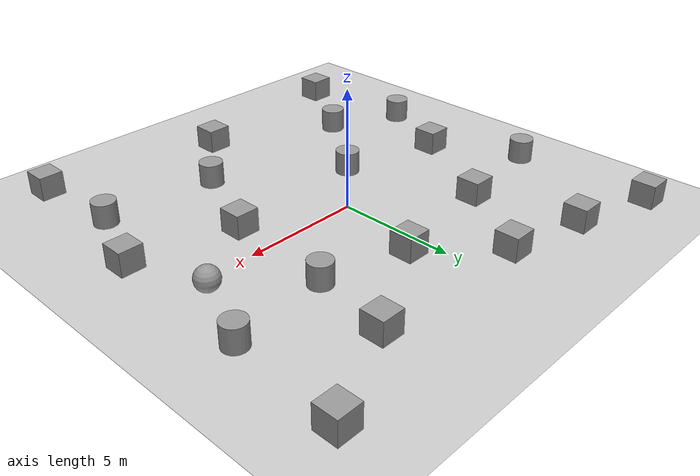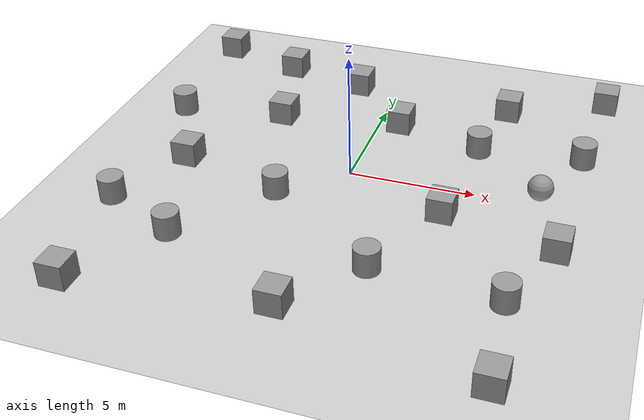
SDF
<sdf version="1.6">
 <world name="default">
  <light name="sun" type="directional">
   <pose>0 0 10 0 -0 0</pose>
   <diffuse>0.8 0.8 0.8 1</diffuse>
   <specular>0.1 0.1 0.1 1</specular>
   <attenuation>
    <range>1000</range>
    <constant>0.9</constant>
    <linear>0.01</linear>
    <quadratic>0.001</quadratic>
   </attenuation>
   <direction>-0.5 0.5 -1</direction>
  </light>
  <model name="ground_plane">
   <static>1</static>
   <link name="link">
    <collision name="collision">
     <geometry><plane><normal>0 0 1</normal><size>100 100</size></plane></geometry>
     <surface><friction><ode><mu>100</mu><mu2>50</mu2></ode></friction></surface>
    </collision>
    <visual name="visual">
     <cast_shadows>0</cast_shadows>
     <geometry><plane><normal>0 0 1</normal><size>100 100</size></plane></geometry>
     <material>
      <script><uri>file://media/materials/scripts/gazebo.material</uri><name>Gazebo/Grey</name></script>
     </material>
    </visual>
   </link>
  </model>
  <gravity>0 0 -9.8</gravity>
  <magnetic_field>6e-06 2.3e-05 -4.2e-05</magnetic_field>
  <atmosphere type="adiabatic"/>
  <physics name="default_physics" default="0" type="ode">
   <max_step_size>0.001</max_step_size>
   <real_time_factor>1</real_time_factor>
   <real_time_update_rate>1000</real_time_update_rate>
  </physics>
  <scene><ambient>0.4 0.4 0.4 1</ambient><background>0.7 0.7 0.7 1</background><shadows>1</shadows></scene>
  <spherical_coordinates>
   <surface_model>EARTH_WGS84</surface_model>
   <latitude_deg>0</latitude_deg>
   <longitude_deg>0</longitude_deg>
   <elevation>0</elevation>
   <heading_deg>0</heading_deg>
  </spherical_coordinates>
  <model name="unit_box_0">
   <pose>-4.04425 3.20234 0.499995 0 1e-05 0</pose>
   <link name="link">
    <inertial>
     <mass>1</mass>
     <inertia>
      <ixx>0.166667</ixx>
      <ixy>0</ixy>
      <ixz>0</ixz>
      <iyy>0.166667</iyy>
      <iyz>0</iyz>
      <izz>0.166667</izz>
     </inertia>
    </inertial>
    <collision name="collision"><geometry><box><size>1 1 1</size></box></geometry></collision>
    <visual name="visual">
     <geometry><box><size>1 1 1</size></box></geometry>
     <material>
      <script><name>Gazebo/Grey</name><uri>file://media/materials/scripts/gazebo.material</uri></script>
     </material>
    </visual>
   </link>
  </model>
  <model name="unit_box_1">
   <pose>-5.14539 7.37162 0.499995 1e-05 -0 0</pose>
   <link name="link">
    <inertial>
     <mass>1</mass>
     <inertia>
      <ixx>0.166667</ixx>
      <ixy>0</ixy>
      <ixz>0</ixz>
      <iyy>0.166667</iyy>
      <iyz>0</iyz>
      <izz>0.166667</izz>
     </inertia>
    </inertial>
    <collision name="collision"><geometry><box><size>1 1 1</size></box></geometry></collision>
    <visual name="visual">
     <geometry><box><size>1 1 1</size></box></geometry>
     <material>
      <script><name>Gazebo/Grey</name><uri>file://media/materials/scripts/gazebo.material</uri></script>
     </material>
    </visual>
   </link>
  </model>
  <model name="unit_box_2">
   <pose>-1.71052 6.6387 0.499995 0 1e-05 0</pose>
   <link name="link">
    <inertial>
     <mass>1</mass>
     <inertia>
      <ixx>0.166667</ixx>
      <ixy>0</ixy>
      <ixz>0</ixz>
      <iyy>0.166667</iyy>
      <iyz>0</iyz>
      <izz>0.166667</izz>
     </inertia>
    </inertial>
    <collision name="collision"><geometry><box><size>1 1 1</size></box></geometry></collision>
    <visual name="visual">
     <geometry><box><size>1 1 1</size></box></geometry>
     <material>
      <script><name>Gazebo/Grey</name><uri>file://media/materials/scripts/gazebo.material</uri></script>
     </material>
    </visual>
   </link>
  </model>
  <model name="unit_box_3">
   <pose>-6.50286 -0.994075 0.499995 -1e-05 0 0</pose>
   <link name="link">
    <inertial>
     <mass>1</mass>
     <inertia>
      <ixx>0.166667</ixx>
      <ixy>0</ixy>
      <ixz>0</ixz>
      <iyy>0.166667</iyy>
      <iyz>0</iyz>
      <izz>0.166667</izz>
     </inertia>
    </inertial>
    <collision name="collision"><geometry><box><size>1 1 1</size></box></geometry></collision>
    <visual name="visual">
     <geometry><box><size>1 1 1</size></box></geometry>
     <material>
      <script><name>Gazebo/Grey</name><uri>file://media/materials/scripts/gazebo.material</uri></script>
     </material>
    </visual>
   </link>
  </model>
  <model name="unit_box_4">
   <pose>5.0846 6.34804 0.499995 0 1e-05 0</pose>
   <link name="link">
    <inertial>
     <mass>1</mass>
     <inertia>
      <ixx>0.166667</ixx>
      <ixy>0</ixy>
      <ixz>0</ixz>
      <iyy>0.166667</iyy>
      <iyz>0</iyz>
      <izz>0.166667</izz>
     </inertia>
    </inertial>
    <collision name="collision"><geometry><box><size>1 1 1</size></box></geometry></collision>
    <visual name="visual">
     <geometry><box><size>1 1 1</size></box></geometry>
     <material>
      <script><name>Gazebo/Grey</name><uri>file://media/materials/scripts/gazebo.material</uri></script>
     </material>
    </visual>
   </link>
  </model>
  <model name="unit_cylinder_0">
   <pose>4.48937 3.02562 0.499993 -3e-06 2e-06 0</pose>
   <link name="link">
    <inertial>
     <mass>1</mass>
     <inertia><ixx>0.145833</ixx><ixy>0</ixy><ixz>0</ixz><iyy>0.145833</iyy><iyz>0</iyz><izz>0.125</izz></inertia>
    </inertial>
    <collision name="collision">
     <geometry><cylinder><radius>0.5</radius><length>1</length></cylinder></geometry>
    </collision>
    <visual name="visual">
     <geometry><cylinder><radius>0.5</radius><length>1</length></cylinder></geometry>
     <material>
      <script><name>Gazebo/Grey</name><uri>file://media/materials/scripts/gazebo.material</uri></script>
     </material>
    </visual>
   </link>
  </model>
  <model name="unit_cylinder_1">
   <pose>-2.26939 -2.15261 0.499998 3e-06 -2e-06 0</pose>
   <link name="link">
    <inertial>
     <mass>1</mass>
     <inertia><ixx>0.145833</ixx><ixy>0</ixy><ixz>0</ixz><iyy>0.145833</iyy><iyz>0</iyz><izz>0.125</izz></inertia>
    </inertial>
    <collision name="collision">
     <geometry><cylinder><radius>0.5</radius><length>1</length></cylinder></geometry>
    </collision>
    <visual name="visual">
     <geometry><cylinder><radius>0.5</radius><length>1</length></cylinder></geometry>
     <material>
      <script><name>Gazebo/Grey</name><uri>file://media/materials/scripts/gazebo.material</uri></script>
     </material>
    </visual>
   </link>
  </model>
  <model name="unit_cylinder_2">
   <pose>-5.00778 -5.72124 0.499993 -3e-06 2e-06 0</pose>
   <link name="link">
    <inertial>
     <mass>1</mass>
     <inertia><ixx>0.145833</ixx><ixy>0</ixy><ixz>0</ixz><iyy>0.145833</iyy><iyz>0</iyz><izz>0.125</izz></inertia>
    </inertial>
    <collision name="collision">
     <geometry><cylinder><radius>0.5</radius><length>1</length></cylinder></geometry>
    </collision>
    <visual name="visual">
     <geometry><cylinder><radius>0.5</radius><length>1</length></cylinder></geometry>
     <material>
      <script><name>Gazebo/Grey</name><uri>file://media/materials/scripts/gazebo.material</uri></script>
     </material>
    </visual>
   </link>
  </model>
  <model name="unit_box_5">
   <pose>4.12434 -1.66097 0.499995 0 1e-05 0</pose>
   <link name="link">
    <inertial>
     <mass>1</mass>
     <inertia>
      <ixx>0.166667</ixx>
      <ixy>0</ixy>
      <ixz>0</ixz>
      <iyy>0.166667</iyy>
      <iyz>0</iyz>
      <izz>0.166667</izz>
     </inertia>
    </inertial>
    <collision name="collision"><geometry><box><size>1 1 1</size></box></geometry></collision>
    <visual name="visual">
     <geometry><box><size>1 1 1</size></box></geometry>
     <material>
      <script><name>Gazebo/Grey</name><uri>file://media/materials/scripts/gazebo.material</uri></script>
     </material>
    </visual>
   </link>
  </model>
  <model name="unit_cylinder_3">
   <pose>2.4509 -5.46721 0.499993 -3e-06 2e-06 0</pose>
   <link name="link">
    <inertial>
     <mass>1</mass>
     <inertia><ixx>0.145833</ixx><ixy>0</ixy><ixz>0</ixz><iyy>0.145833</iyy><iyz>0</iyz><izz>0.125</izz></inertia>
    </inertial>
    <collision name="collision">
     <geometry><cylinder><radius>0.5</radius><length>1</length></cylinder></geometry>
    </collision>
    <visual name="visual">
     <geometry><cylinder><radius>0.5</radius><length>1</length></cylinder></geometry>
     <material>
      <script><name>Gazebo/Grey</name><uri>file://media/materials/scripts/gazebo.material</uri></script>
     </material>
    </visual>
   </link>
  </model>
  <model name="unit_sphere_1">
   <pose>7.39829 0.553822 0.5 0 -0 0</pose>
   <link name="link">
    <inertial>
     <mass>1</mass>
     <inertia><ixx>0.1</ixx><ixy>0</ixy><ixz>0</ixz><iyy>0.1</iyy><iyz>0</iyz><izz>0.1</izz></inertia>
    </inertial>
    <collision name="collision"><geometry><sphere><radius>0.5</radius></sphere></geometry></collision>
    <visual name="visual">
     <geometry><sphere><radius>0.5</radius></sphere></geometry>
     <material>
      <script><name>Gazebo/Grey</name><uri>file://media/materials/scripts/gazebo.material</uri></script>
     </material>
    </visual>
   </link>
  </model>
  <model name="unit_cylinder_4">
   <pose>7.31786 -5.83205 0.499998 3e-06 -3e-06 0</pose>
   <link name="link">
    <inertial>
     <mass>1</mass>
     <inertia><ixx>0.145833</ixx><ixy>0</ixy><ixz>0</ixz><iyy>0.145833</iyy><iyz>0</iyz><izz>0.125</izz></inertia>
    </inertial>
    <collision name="collision">
     <geometry><cylinder><radius>0.5</radius><length>1</length></cylinder></geometry>
    </collision>
    <visual name="visual">
     <geometry><cylinder><radius>0.5</radius><length>1</length></cylinder></geometry>
     <material>
      <script><name>Gazebo/Grey</name><uri>file://media/materials/scripts/gazebo.material</uri></script>
     </material>
    </visual>
   </link>
  </model>
  <model name="unit_box_6">
   <pose>-7.26809 -9.17929 0.499995 -1e-05 0 0</pose>
   <link name="link">
    <inertial>
     <mass>1</mass>
     <inertia>
      <ixx>0.166667</ixx>
      <ixy>0</ixy>
      <ixz>0</ixz>
      <iyy>0.166667</iyy>
      <iyz>0</iyz>
      <izz>0.166667</izz>
     </inertia>
    </inertial>
    <collision name="collision"><geometry><box><size>1 1 1</size></box></geometry></collision>
    <visual name="visual">
     <geometry><box><size>1 1 1</size></box></geometry>
     <material>
      <script><name>Gazebo/Grey</name><uri>file://media/materials/scripts/gazebo.material</uri></script>
     </material>
    </visual>
   </link>
  </model>
  <model name="unit_box_7">
   <pose>7.65097 -9.61432 0.499995 0 1e-05 0</pose>
   <link name="link">
    <inertial>
     <mass>1</mass>
     <inertia>
      <ixx>0.166667</ixx>
      <ixy>0</ixy>
      <ixz>0</ixz>
      <iyy>0.166667</iyy>
      <iyz>0</iyz>
      <izz>0.166667</izz>
     </inertia>
    </inertial>
    <collision name="collision"><geometry><box><size>1 1 1</size></box></geometry></collision>
    <visual name="visual">
     <geometry><box><size>1 1 1</size></box></geometry>
     <material>
      <script><name>Gazebo/Grey</name><uri>file://media/materials/scripts/gazebo.material</uri></script>
     </material>
    </visual>
   </link>
  </model>
  <model name="unit_box_8">
   <pose>0.166115 -8.22319 0.499995 -1e-05 0 0</pose>
   <link name="link">
    <inertial>
     <mass>1</mass>
     <inertia>
      <ixx>0.166667</ixx>
      <ixy>0</ixy>
      <ixz>0</ixz>
      <iyy>0.166667</iyy>
      <iyz>0</iyz>
      <izz>0.166667</izz>
     </inertia>
    </inertial>
    <collision name="collision"><geometry><box><size>1 1 1</size></box></geometry></collision>
    <visual name="visual">
     <geometry><box><size>1 1 1</size></box></geometry>
     <material>
      <script><name>Gazebo/Grey</name><uri>file://media/materials/scripts/gazebo.material</uri></script>
     </material>
    </visual>
   </link>
  </model>
  <model name="unit_box_9">
   <pose>0.923208 3.95612 0.499995 0 1e-05 0</pose>
   <link name="link">
    <inertial>
     <mass>1</mass>
     <inertia>
      <ixx>0.166667</ixx>
      <ixy>0</ixy>
      <ixz>0</ixz>
      <iyy>0.166667</iyy>
      <iyz>0</iyz>
      <izz>0.166667</izz>
     </inertia>
    </inertial>
    <collision name="collision"><geometry><box><size>1 1 1</size></box></geometry></collision>
    <visual name="visual">
     <geometry><box><size>1 1 1</size></box></geometry>
     <material>
      <script><name>Gazebo/Grey</name><uri>file://media/materials/scripts/gazebo.material</uri></script>
     </material>
    </visual>
   </link>
  </model>
  <model name="unit_box_10">
   <pose>-8.63656 8.3542 0.499995 -1e-05 0 0</pose>
   <link name="link">
    <inertial>
     <mass>1</mass>
     <inertia>
      <ixx>0.166667</ixx>
      <ixy>0</ixy>
      <ixz>0</ixz>
      <iyy>0.166667</iyy>
      <iyz>0</iyz>
      <izz>0.166667</izz>
     </inertia>
    </inertial>
    <collision name="collision"><geometry><box><size>1 1 1</size></box></geometry></collision>
    <visual name="visual">
     <geometry><box><size>1 1 1</size></box></geometry>
     <material>
      <script><name>Gazebo/Grey</name><uri>file://media/materials/scripts/gazebo.material</uri></script>
     </material>
    </visual>
   </link>
  </model>
  <model name="unit_box_11">
   <pose>8.99149 8.22035 0.499995 0 1e-05 0</pose>
   <link name="link">
    <inertial>
     <mass>1</mass>
     <inertia>
      <ixx>0.166667</ixx>
      <ixy>0</ixy>
      <ixz>0</ixz>
      <iyy>0.166667</iyy>
      <iyz>0</iyz>
      <izz>0.166667</izz>
     </inertia>
    </inertial>
    <collision name="collision"><geometry><box><size>1 1 1</size></box></geometry></collision>
    <visual name="visual">
     <geometry><box><size>1 1 1</size></box></geometry>
     <material>
      <script><name>Gazebo/Grey</name><uri>file://media/materials/scripts/gazebo.material</uri></script>
     </material>
    </visual>
   </link>
  </model>
  <model name="unit_cylinder_5">
   <pose>-8.39409 2.53726 0.499992 -3e-06 4e-06 0</pose>
   <link name="link">
    <inertial>
     <mass>1</mass>
     <inertia><ixx>0.145833</ixx><ixy>0</ixy><ixz>0</ixz><iyy>0.145833</iyy><iyz>0</iyz><izz>0.125</izz></inertia>
    </inertial>
    <collision name="collision">
     <geometry><cylinder><radius>0.5</radius><length>1</length></cylinder></geometry>
    </collision>
    <visual name="visual">
     <geometry><cylinder><radius>0.5</radius><length>1</length></cylinder></geometry>
     <material>
      <script><name>Gazebo/Grey</name><uri>file://media/materials/scripts/gazebo.material</uri></script>
     </material>
    </visual>
   </link>
  </model>
  <model name="unit_cylinder_6">
   <pose>8.62944 3.46707 0.499998 3e-06 4e-06 -0</pose>
   <link name="link">
    <inertial>
     <mass>1</mass>
     <inertia><ixx>0.145833</ixx><ixy>0</ixy><ixz>0</ixz><iyy>0.145833</iyy><iyz>0</iyz><izz>0.125</izz></inertia>
    </inertial>
    <collision name="collision">
     <geometry><cylinder><radius>0.5</radius><length>1</length></cylinder></geometry>
    </collision>
    <visual name="visual">
     <geometry><cylinder><radius>0.5</radius><length>1</length></cylinder></geometry>
     <material>
      <script><name>Gazebo/Grey</name><uri>file://media/materials/scripts/gazebo.material</uri></script>
     </material>
    </visual>
   </link>
  </model>
  <model name="unit_cylinder_7">
   <pose>-8.03787 -4.33587 0.499997 3e-06 3e-06 0</pose>
   <link name="link">
    <inertial>
     <mass>1</mass>
     <inertia><ixx>0.145833</ixx><ixy>0</ixy><ixz>0</ixz><iyy>0.145833</iyy><iyz>0</iyz><izz>0.125</izz></inertia>
    </inertial>
    <collision name="collision">
     <geometry><cylinder><radius>0.5</radius><length>1</length></cylinder></geometry>
    </collision>
    <visual name="visual">
     <geometry><cylinder><radius>0.5</radius><length>1</length></cylinder></geometry>
     <material>
      <script><name>Gazebo/Grey</name><uri>file://media/materials/scripts/gazebo.material</uri></script>
     </material>
    </visual>
   </link>
  </model>
  <model name="unit_box_12">
   <pose>8.52195 -2.66946 0.5 0 -0 0</pose>
   <link name="link">
    <inertial>
     <mass>1</mass>
     <inertia>
      <ixx>0.166667</ixx>
      <ixy>0</ixy>
      <ixz>0</ixz>
      <iyy>0.166667</iyy>
      <iyz>0</iyz>
      <izz>0.166667</izz>
     </inertia>
    </inertial>
    <collision name="collision"><geometry><box><size>1 1 1</size></box></geometry></collision>
    <visual name="visual">
     <geometry><box><size>1 1 1</size></box></geometry>
     <material>
      <script><name>Gazebo/Grey</name><uri>file://media/materials/scripts/gazebo.material</uri></script>
     </material>
    </visual>
   </link>
  </model>
 </world>
</sdf>
